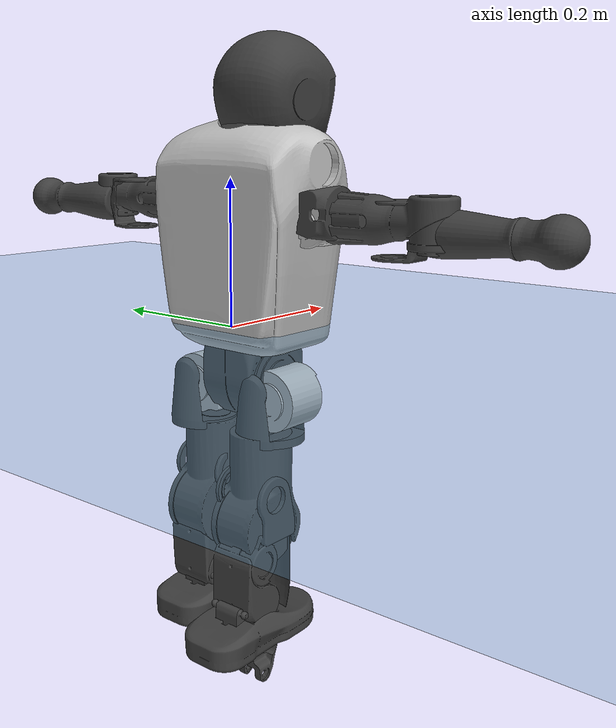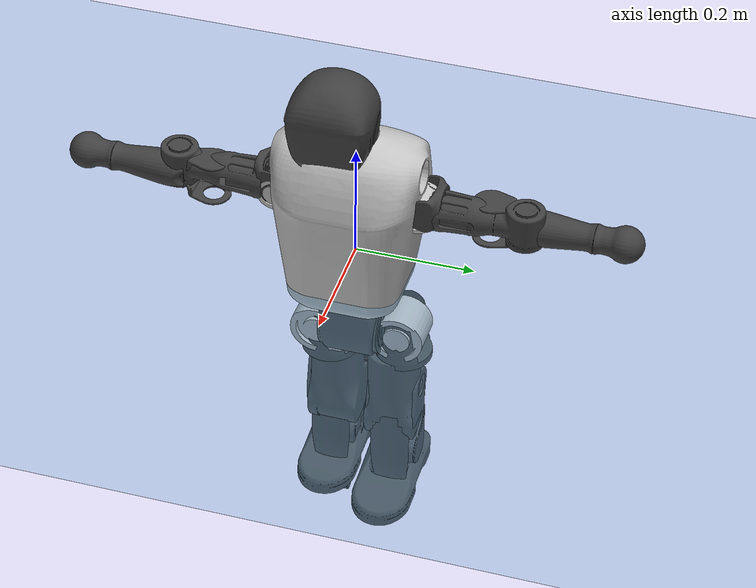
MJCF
<mujoco model="T1">
  <compiler angle="radian" assetdir="assets" balanceinertia="true" inertiafromgeom="false"/>

  <option timestep="0.005" density="1.2" viscosity="2e-05"/>

  <size nkey="1"/>

  <visual>
    <quality shadowsize="8192"/>
    <map shadowclip="0.5"/>
  </visual>

  <default>
    <default class="/">
      <joint armature="0.01" damping="0.01" frictionloss="0.1"/>
      <geom contype="0" conaffinity="0" group="1" solref="-1000 -80"/>
      <site size="0.01 0.005 0.005" group="5"/>
      <general forcelimited="true" biastype="affine" gainprm="25" biasprm="0 -25 -0.6"/>
      <default class="t1">
        <geom rgba="0.25 0.25 0.25 1"/>
        <default class="visual">
          <geom type="mesh" group="2"/>
        </default>
        <default class="collision">
          <geom group="3"/>
        </default>
        <default class="foot">
          <geom size="0.1115 0.05 0.015" type="box" condim="6" group="4" priority="1" solimp="0.015 1 0.015"/>
        </default>
        <default class="reward_collision_sphere">
          <geom group="5" rgba="1 0 0 1"/>
        </default>
      </default>
    </default>
  </default>

  <asset>
    <texture type="skybox" colorspace="auto" name="//unnamed_texture_0" builtin="gradient" rgb1="0.95 0.95 0.95" rgb2="0.95 0.95 0.95" width="100" height="600"/>
    <texture type="2d" colorspace="auto" name="texplane" builtin="checker" rgb1="0.345 0.575 0.748" rgb2="0.345 0.575 0.748" markrgb="1 1 1" width="512" height="512"/>
    <material name="MatPlane" class="/" texture="texplane" texuniform="true" texrepeat="2 2" specular="0.9"/>
    <mesh name="Trunk" class="/" file="Trunk.stl"/>
    <mesh name="H1" class="/" file="H1.stl"/>
    <mesh name="H2" class="/" file="H2.stl"/>
    <mesh name="AL1" class="/" file="AL1.stl"/>
    <mesh name="AL2" class="/" file="AL2.stl"/>
    <mesh name="AL3" class="/" file="AL3.stl"/>
    <mesh name="left_hand_link" class="/" file="left_hand_link.stl"/>
    <mesh name="AR1" class="/" file="AR1.stl"/>
    <mesh name="AR2" class="/" file="AR2.stl"/>
    <mesh name="AR3" class="/" file="AR3.stl"/>
    <mesh name="right_hand_link" class="/" file="right_hand_link.stl"/>
    <mesh name="Waist" class="/" file="Waist.stl"/>
    <mesh name="Hip_Pitch_Left" class="/" file="Hip_Pitch_Left.stl"/>
    <mesh name="Hip_Roll_Left" class="/" file="Hip_Roll_Left.stl"/>
    <mesh name="Hip_Yaw_Left" class="/" file="Hip_Yaw_Left.stl"/>
    <mesh name="Shank_Left" class="/" file="Shank_Left.stl"/>
    <mesh name="Ankle_Cross_Left" class="/" file="Ankle_Cross_Left.stl"/>
    <mesh name="left_foot_link" class="/" file="left_foot_link.stl"/>
    <mesh name="Hip_Pitch_Right" class="/" file="Hip_Pitch_Right.stl"/>
    <mesh name="Hip_Roll_Right" class="/" file="Hip_Roll_Right.stl"/>
    <mesh name="Hip_Yaw_Right" class="/" file="Hip_Yaw_Right.stl"/>
    <mesh name="Shank_Right" class="/" file="Shank_Right.stl"/>
    <mesh name="Ankle_Cross_Right" class="/" file="Ankle_Cross_Right.stl"/>
    <mesh name="right_foot_link" class="/" file="right_foot_link.stl"/>
  </asset>

  <worldbody>
    <geom name="floor" class="/" size="100 100 0.125" type="plane" group="0" material="MatPlane"/>
    <light name="toplight_shadow" class="/" pos="0 0 5" dir="0.0990148 0.0990148 -0.990148" type="directional" ambient="0.04 0.04 0.04" diffuse="0.55 0.55 0.55" specular="0.12 0.12 0.12"/>
    <light name="toplight_fill" class="/" pos="0 0 5" dir="0.0990148 0.0990148 -0.990148" type="directional" castshadow="false" ambient="0.04 0.04 0.04" diffuse="0.3 0.3 0.3" specular="0.08 0.08 0.08"/>
    <body name="trunk" childclass="t1" pos="0.00077039 0.00777243 -1.37091e-05" quat="0.999977 0.00233897 -0.00588282 -0.00242304">
      <inertial pos="0.060737 0.011425 0.0766118" quat="0.999904 -0.00244675 -0.0134074 -0.00262594" mass="5.32141" diaginertia="0.0570436 0.0104863 0.00807146"/>
      <joint name="//unnamed_joint_0" type="free" armature="0" damping="0" frictionloss="0"/>
      <geom name="//unnamed_geom_1" class="visual" rgba="0.76 0.76 0.76 1" mesh="Trunk"/>
      <geom name="//unnamed_geom_2" class="collision" size="0.0555896 0.0741195 0.111179" pos="0.0542428 0 0.0790537" type="box"/>
      <geom name="//unnamed_geom_3" class="reward_collision_sphere" size="0.0852374" pos="0.0542428 0 0.0658781"/>
      <geom name="//unnamed_geom_4" class="reward_collision_sphere" size="0.0111179" pos="0.0542428 0.0561644 0"/>
      <geom name="//unnamed_geom_5" class="reward_collision_sphere" size="0.0111179" pos="0.0542428 -0.0561644 0"/>
      <geom name="//unnamed_geom_6" class="reward_collision_sphere" size="0.0111179" pos="0.0542428 0.0707011 0.118581"/>
      <geom name="//unnamed_geom_7" class="reward_collision_sphere" size="0.0111179" pos="0.0542428 -0.0707011 0.118581"/>
      <site name="imu" pos="-0.0501272 -0.0200926 0.05028" size="0.00741195"/>
      <camera name="track" pos="0 -1.32152 0" quat="0.707107 0.707107 0 0" mode="trackcom"/>
      <camera name="ego_camera" pos="0.110294 0 0.276688" quat="-0.5 -0.5 0.5 0.5"/>
      <body name="H1" pos="0.0624205 -0.00748923 0.15549" quat="0.999995 0.000740285 0.00192207 0.002566">
        <inertial pos="0.0078316 -0.0152791 0.0305613" quat="0.777738 -0.0674229 -0.027725 0.624347" mass="0.187653" diaginertia="0.000152389 3.11063e-05 2.49002e-05"/>
        <joint name="AAHead_yaw" pos="0 0 0" axis="-0.0558942 -0.0370083 0.997751" range="-1.47442 1.63302" armature="0.0105303" damping="0" frictionloss="0.0705684"/>
        <geom name="//unnamed_geom_8" class="visual" mesh="H1"/>
        <body name="H2" pos="-0.0098167 -0.0137122 0.0430588" quat="0.999999 -0.00110846 0.00100085 0.000278572">
          <inertial pos="0.00530375 -0.0120476 0.0672958" quat="0.989682 0.0973476 -0.0805597 -0.0675515" mass="0.264708" diaginertia="0.00105803 0.000231086 0.000220663"/>
          <joint name="Head_pitch" pos="0 0 0" axis="-0.0322625 -0.999457 -0.0067568" stiffness="0.00211154" range="-1.21427 0.342295" armature="0.0124548" damping="0" frictionloss="0.0163359"/>
          <geom name="//unnamed_geom_9" class="visual" mesh="H2"/>
          <geom name="//unnamed_geom_10" class="collision" size="0.0592956" pos="0.00904046 0 0.0724659"/>
          <geom name="//unnamed_geom_11" class="reward_collision_sphere" size="0.0667075" pos="0.0180809 0 0.0658781"/>
        </body>
      </body>
      <body name="AL1" pos="0.0590042 0.0692239 0.158404" quat="1 0.000436285 0.000221474 -0.000257019">
        <inertial pos="0.0132888 0.0277773 0.00364399" quat="0.504163 0.501137 -0.497192 0.497475" mass="0.223313" diaginertia="0.000861419 0.000166855 4.27772e-05"/>
        <joint name="Left_Shoulder_Pitch" pos="0 0 0" axis="-0.0272252 0.997555 0.0643713" range="-3.29112 1.37773" armature="0.00861784" damping="0.00142204" frictionloss="0.0759483"/>
        <geom name="//unnamed_geom_12" class="visual" rgba="0.76 0.76 0.76 1" mesh="AL1"/>
        <body name="AL2" pos="-0.00195967 0.0302858 0.0101052" quat="1 -0.000104341 0.000380155 0.000202419">
          <inertial pos="-0.00445566 0.032987 0.0118856" quat="0.520098 0.471802 -0.476736 0.528794" mass="0.0602181" diaginertia="0.000237447 4.31168e-05 2.11089e-05"/>
          <joint name="Left_Shoulder_Roll" pos="0 0 0" axis="-0.999278 0.0377624 -0.00425701" range="-1.56342 1.69004" armature="0.00673845" damping="0" frictionloss="0.0720614"/>
          <geom name="//unnamed_geom_13" class="visual" mesh="AL2"/>
          <body name="AL3" pos="0.00276708 0.0409955 -0.00658713" quat="1 -0.000199076 -9.43282e-05 -0.000217695">
            <inertial pos="0.00863514 0.0571255 -0.00224929" quat="0.703053 0.707632 -0.0678777 0.0191098" mass="0.434502" diaginertia="0.00732015 0.00170043 9.5746e-05"/>
            <joint name="Left_Elbow_Pitch" pos="0 0 0" axis="0.00636279 -0.99998 -0.000476792" range="-2.16417 2.32727" armature="0.00736335" damping="0" frictionloss="0.0205199"/>
            <geom name="//unnamed_geom_14" class="visual" mesh="AL3"/>
            <geom name="//unnamed_geom_15" class="collision" size="0.0222358 0.0555896" pos="0 0.0330379 0" quat="0.707105 0.707108 0 0" type="cylinder"/>
            <geom name="//unnamed_geom_16" class="reward_collision_sphere" size="0.026683"/>
            <body name="left_hand_link" pos="-0.0125158 0.0877285 -0.00940865" quat="0.999999 0.000235175 0.00106492 -0.00121488">
              <inertial pos="-0.0127613 0.0823532 0.0125624" quat="0.721513 0.69214 0.00793921 0.0172746" mass="0.131241" diaginertia="0.00490038 0.000956233 2.27227e-05"/>
              <joint name="Left_Elbow_Yaw" pos="0 0 0" axis="-0.00746254 0.00331232 0.999967" stiffness="0.0360447" range="-2.41357 0.0824885" armature="0.00353139" damping="0" frictionloss="0.0726012"/>
              <geom name="//unnamed_geom_17" class="visual" mesh="left_hand_link"/>
              <geom name="//unnamed_geom_18" class="collision" size="0.0222358 0.0648546" pos="0 0.0858985 0" quat="0.707105 0.707108 0 0" type="cylinder"/>
              <geom name="//unnamed_geom_19" class="reward_collision_sphere" size="0.0370597"/>
              <geom name="//unnamed_geom_20" class="reward_collision_sphere" size="0.0259418" pos="0 0.0726833 0"/>
              <geom name="//unnamed_geom_21" class="reward_collision_sphere" size="0.0259418" pos="0 0.142063 0"/>
            </body>
          </body>
        </body>
      </body>
      <body name="AR1" pos="0.0498754 -0.0730101 0.145164" quat="0.99997 0.00262561 -0.000374735 -0.00732001">
        <inertial pos="-0.00105049 -0.0231258 -0.006912" quat="0.504162 0.49595 -0.503918 0.495904" mass="0.180599" diaginertia="0.000773397 0.000136769 2.98788e-05"/>
        <joint name="Right_Shoulder_Pitch" pos="0 0 0" axis="-0.00586317 -0.999754 -0.0213727" range="-1.40812 3.32261" armature="0.00941322" damping="0.000161957" frictionloss="0.100157"/>
        <geom name="//unnamed_geom_22" class="visual" rgba="0.76 0.76 0.76 1" mesh="AR1"/>
        <body name="AR2" pos="-0.00574394 -0.0273443 0.0138698" quat="0.999983 -0.0026707 0.00276719 0.00438818">
          <inertial pos="0.00976179 -0.0311474 0.00525655" quat="0.520053 0.452061 -0.503468 0.521254" mass="0.0723996" diaginertia="0.000270619 4.40083e-05 2.44527e-05"/>
          <joint name="Right_Shoulder_Roll" pos="0 0 0" axis="-0.998828 -0.00679958 0.0479136" stiffness="0.0477177" range="-1.59402 1.72159" armature="0.00767217" damping="0.0644699" frictionloss="0.0830117"/>
          <geom name="//unnamed_geom_23" class="visual" mesh="AR2"/>
          <body name="AR3" pos="0.00894662 -0.0397828 -0.00575208" quat="0.99998 -0.00427133 -0.00224019 -0.00406355">
            <inertial pos="-0.0155371 -0.0571348 -0.00656246" quat="0.717031 0.69696 0.00221008 0.0103875" mass="0.395981" diaginertia="0.00597531 0.00141454 6.90366e-05"/>
            <joint name="Right_Elbow_Pitch" pos="0 0 0" axis="-0.027663 0.999128 0.0312886" stiffness="0.0150569" range="-2.14695 2.58885" armature="0.00652985" damping="0" frictionloss="0.0457912"/>
            <geom name="//unnamed_geom_24" class="visual" mesh="AR3"/>
            <geom name="//unnamed_geom_25" class="collision" size="0.0222358 0.0555896" pos="0 -0.0330379 0" quat="0.707105 0.707108 0 0" type="cylinder"/>
            <geom name="//unnamed_geom_26" class="reward_collision_sphere" size="0.026683"/>
            <body name="right_hand_link" pos="0.00764624 -0.087715 -0.0122676" quat="0.999983 -0.00236092 0.00378468 -0.00377202">
              <inertial pos="-0.014501 -0.0780534 0.0131645" quat="0.707445 0.706762 0.00108457 -0.00282048" mass="0.148577" diaginertia="0.00701635 0.00136182 2.63167e-05"/>
              <joint name="Right_Elbow_Yaw" pos="0 0 0" axis="0.000306774 8.70559e-05 1" stiffness="0.0163911" range="-0.0125862 2.69158" armature="0.009343" damping="0" frictionloss="0.0780341"/>
              <geom name="//unnamed_geom_27" class="visual" mesh="right_hand_link"/>
              <geom name="//unnamed_geom_28" class="collision" size="0.0222358 0.0648546" pos="0 -0.0858985 0" quat="0.707105 0.707108 0 0" type="cylinder"/>
              <geom name="//unnamed_geom_29" class="reward_collision_sphere" size="0.0370597"/>
              <geom name="//unnamed_geom_30" class="reward_collision_sphere" size="0.0259418" pos="0 -0.0726833 0"/>
              <geom name="//unnamed_geom_31" class="reward_collision_sphere" size="0.0259418" pos="0 -0.142063 0"/>
            </body>
          </body>
        </body>
      </body>
      <body name="Waist" pos="0.0665185 0.0127982 -0.0840226" quat="0.999999 0.00138181 -0.000748092 -0.000381354">
        <inertial pos="-0.00185166 -0.011353 0.00756904" quat="0.986102 -0.0253522 -0.158518 0.0427988" mass="1.34343" diaginertia="0.00383679 0.000821054 0.000744855"/>
        <joint name="Waist" pos="0 0 0" axis="-0.000583016 0.0297475 0.999557" stiffness="0.0338931" range="-1.42832 1.69993" armature="0.0071431" damping="0.079848" frictionloss="0.0419347"/>
        <geom name="//unnamed_geom_32" class="visual" mesh="Waist"/>
        <body name="Hip_Pitch_Left" pos="-0.00866676 0.0750924 0.00316718" quat="1 0.000189654 0.00010493 3.50314e-05">
          <inertial pos="0.00743745 -0.0071409 0.00103432" quat="0.97928 0.201508 0.00389461 0.019756" mass="0.445137" diaginertia="0.00118489 0.000202 0.000168353"/>
          <joint name="Left_Hip_Pitch" pos="0 0 0" axis="0.025529 0.999465 0.0204351" range="-1.86369 1.32259" armature="0.00945184" damping="0.0586035" frictionloss="0.0737881"/>
          <geom name="//unnamed_geom_33" class="visual" rgba="0.76 0.76 0.76 1" mesh="Hip_Pitch_Left"/>
          <body name="Hip_Roll_Left" pos="-0.0130444 0.000528219 -0.00397371" quat="0.999999 0.000412817 0.000800826 0.000729863">
            <inertial pos="0.00496469 -0.000136931 -0.0235276" quat="0.705445 -0.0154963 0.000643802 0.708595" mass="0.12337" diaginertia="0.000760614 0.000185573 6.28059e-05"/>
            <joint name="Left_Hip_Roll" pos="0 0 0" axis="-0.999392 0.0334207 0.0098929" stiffness="0.0651191" range="-1.43388 -0.0702446" armature="0.0068208" damping="0" frictionloss="0.0663114"/>
            <geom name="//unnamed_geom_34" class="visual" mesh="Hip_Roll_Left"/>
            <geom name="//unnamed_geom_35" class="reward_collision_sphere" size="0.0407657"/>
            <body name="Hip_Yaw_Left" pos="0.0056135 -0.0140346 -0.0682316" quat="0.999999 -0.00115538 0.000445128 0.000428884">
              <inertial pos="0.00184541 0.000606325 -0.0647464" quat="0.664915 -0.077053 -0.0186003 0.742701" mass="0.908982" diaginertia="0.0130685 0.00339382 0.00026257"/>
              <joint name="Left_Hip_Yaw" pos="0 0 0" axis="-0.00558721 0.00893103 -0.999945" range="-0.951601 0.692219" armature="0.00376651" damping="0.0899254" frictionloss="0.0770043"/>
              <geom name="//unnamed_geom_36" class="visual" mesh="Hip_Yaw_Left"/>
              <geom name="//unnamed_geom_37" class="collision" size="0.0370597 0.0592956" type="cylinder"/>
              <body name="Shank_Left" pos="-0.00805024 0.00230711 -0.0754135" quat="0.999993 -0.0013979 0.00268843 0.00207385">
                <inertial pos="-0.00349098 0.0012254 -0.0700012" quat="0.996622 0.00987069 -0.0390442 0.0715748" mass="0.659906" diaginertia="0.0198538 0.00522124 0.000287643"/>
                <joint name="Left_Knee_Pitch" pos="0 0 0" axis="0.0111115 0.999923 0.00554888" range="-0.172264 2.35746" armature="0.00734512" damping="0.0272689" frictionloss="0.0928743"/>
                <geom name="//unnamed_geom_38" class="visual" mesh="Shank_Left"/>
                <geom name="//unnamed_geom_39" class="collision" size="0.0370597 0.0555896" pos="0 0 -0.0790537" type="cylinder"/>
                <geom name="//unnamed_geom_40" class="reward_collision_sphere" size="0.0481777"/>
                <body name="Ankle_Cross_Left" pos="0.00445886 0.00311669 -0.173366" quat="0.999998 0.00125645 0.00127501 -0.00104348">
                  <inertial pos="0.0102057 -0.0135622 -0.00534717" quat="0.440168 0.551608 0.553431 0.442375" mass="0.0340423" diaginertia="1.59141e-05 3.84321e-06 1.41789e-06"/>
                  <joint name="Left_Ankle_Pitch" pos="0 0 0" axis="0.0583369 0.998282 0.00542715" range="-0.681942 0.26883" armature="0.012008" damping="0" frictionloss="0.0422182"/>
                  <geom name="//unnamed_geom_41" class="visual" mesh="Ankle_Cross_Left"/>
                  <body name="left_foot_link" pos="6.95778e-05 -0.00905742 -0.0193084" quat="0.999973 -0.00347122 -0.00346991 0.00541934">
                    <inertial pos="0.0132782 0.000926002 0.000169831" quat="0.0342597 0.630234 -0.0190082 0.775416" mass="0.315534" diaginertia="0.00147642 0.000289615 0.000235894"/>
                    <joint name="Left_Ankle_Roll" pos="0 0 0" axis="-1 2.67811e-05 -0.000317945" stiffness="0.0617161" range="-0.181825 0.713722" armature="0.00392504" damping="0.00419194" frictionloss="0.123649"/>
                    <geom name="//unnamed_geom_42" class="visual" mesh="left_foot_link"/>
                    <geom name="left_foot" class="foot" size="0.0901582 0.050281 0.0112052" pos="0.00904046 0 -0.00988172"/>
                    <geom name="//unnamed_geom_44" class="reward_collision_sphere" size="0.0385421" pos="0.00904046 0 -0.00988172"/>
                    <geom name="//unnamed_geom_45" class="reward_collision_sphere" size="0.0222358" pos="0.0858844 -0.0151974 -0.00988172"/>
                    <geom name="//unnamed_geom_46" class="reward_collision_sphere" size="0.0222358" pos="-0.0632832 -0.0151974 -0.00988172"/>
                    <site name="left_foot" class="foot" pos="0.00904046 0 -0.00988172" size="0.00741195"/>
                  </body>
                </body>
              </body>
            </body>
          </body>
        </body>
        <body name="Hip_Pitch_Right" pos="-0.00173597 -0.0594694 -0.00200844" quat="0.99998 -0.00619562 -0.000948739 -0.000199381">
          <inertial pos="-0.00637403 0.0158305 -0.0209679" quat="0.975001 -0.221201 0.0210321 0.000779705" mass="0.410729" diaginertia="0.00101967 0.000149457 0.000139769"/>
          <joint name="Right_Hip_Pitch" pos="0 0 0" axis="0.00147026 -0.99999 0.00426227" stiffness="0.00724041" range="-1.4484 1.75564" armature="0.00328377" damping="0" frictionloss="0.0991839"/>
          <geom name="//unnamed_geom_47" class="visual" rgba="0.76 0.76 0.76 1" mesh="Hip_Pitch_Right"/>
          <body name="Hip_Roll_Right" pos="-0.014265 0.01228 -0.00421634" quat="0.999999 0.000238039 0.00119067 -0.000617926">
            <inertial pos="-0.00458135 -0.00619309 -0.0457439" quat="0.706221 -0.0102578 -0.0067801 0.707884" mass="0.116123" diaginertia="0.000951531 0.000147114 5.685e-05"/>
            <joint name="Right_Hip_Roll" pos="0 0 0" axis="-0.999409 -0.0342938 0.00247611" range="-0.190807 1.86636" armature="0.00675041" damping="0.0770757" frictionloss="0.126497"/>
            <geom name="//unnamed_geom_48" class="visual" mesh="Hip_Roll_Right"/>
            <geom name="//unnamed_geom_49" class="reward_collision_sphere" size="0.0407657"/>
            <body name="Hip_Yaw_Right" pos="-0.0137684 0.00743437 -0.062757" quat="0.999987 0.00482965 -0.00148771 0.000509647">
              <inertial pos="-0.00366291 0.00963781 -0.0684977" quat="0.71991 0.039172 -0.00347944 0.692952" mass="0.805098" diaginertia="0.0182607 0.00282197 0.000377045"/>
              <joint name="Right_Hip_Yaw" pos="0 0 0" axis="0.0553417 -0.0527527 -0.997073" range="-1.02139 1.00048" armature="0.0120291" damping="0.0106248" frictionloss="0.0679752"/>
              <geom name="//unnamed_geom_50" class="visual" mesh="Hip_Yaw_Right"/>
              <geom name="//unnamed_geom_51" class="collision" size="0.0370597 0.0592956" type="cylinder"/>
              <body name="Shank_Right" pos="-0.0266458 -0.00813359 -0.084041" quat="0.99999 -0.00201604 3.04581e-05 0.00403913">
                <inertial pos="-0.0132616 -0.000567204 -0.0848198" quat="0.995739 -0.0401383 -0.0797855 -0.0229407" mass="0.85661" diaginertia="0.0197026 0.0047216 0.000233574"/>
                <joint name="Right_Knee_Pitch" pos="0 0 0" axis="0.0110239 -0.999698 0.0219626" stiffness="0.0719546" range="-2.35977 -0.194455" armature="0.00782218" damping="0" frictionloss="0.0783571"/>
                <geom name="//unnamed_geom_52" class="visual" mesh="Shank_Right"/>
                <geom name="//unnamed_geom_53" class="collision" size="0.0370597 0.0555896" pos="0 0 -0.0790537" type="cylinder"/>
                <geom name="//unnamed_geom_54" class="reward_collision_sphere" size="0.0481777"/>
                <body name="Ankle_Cross_Right" pos="-0.0052428 -0.00671434 -0.174872" quat="0.999981 0.00326161 -0.00397809 0.00342921">
                  <inertial pos="-0.00175527 -0.011337 -0.00577344" quat="0.44244 0.55219 0.550076 0.443565" mass="0.0296834" diaginertia="2.07162e-05 3.14743e-06 1.57845e-06"/>
                  <joint name="Right_Ankle_Pitch" pos="0 0 0" axis="0.0413694 -0.998757 0.0278051" range="-0.0364315 0.867901" armature="0.00770992" damping="0" frictionloss="0.0845743"/>
                  <geom name="//unnamed_geom_55" class="visual" mesh="Ankle_Cross_Right"/>
                  <body name="right_foot_link" pos="-0.0111477 0.00146114 -0.0135143" quat="1 -5.0861e-05 0.000112013 -3.46926e-05">
                    <inertial pos="-0.000725581 -0.0113224 -0.00494416" quat="0.0099975 0.604769 -0.0312024 0.795726" mass="0.190966" diaginertia="0.00146563 0.00025975 0.000215165"/>
                    <joint name="Right_Ankle_Roll" pos="0 0 0" axis="-0.999753 -0.017523 0.0136688" stiffness="0.000791286" range="-0.375698 0.610383" armature="0.00638361" damping="0" frictionloss="0.127991"/>
                    <geom name="//unnamed_geom_56" class="visual" mesh="right_foot_link"/>
                    <geom name="right_foot" class="foot" size="0.120258 0.0300248 0.0120896" pos="0.00904046 0 -0.00988172"/>
                    <geom name="//unnamed_geom_58" class="reward_collision_sphere" size="0.0296478"/>
                    <geom name="//unnamed_geom_59" class="reward_collision_sphere" size="0.0222358" pos="0.00904046 0 -0.00988172"/>
                    <geom name="//unnamed_geom_60" class="reward_collision_sphere" size="0.0222358" pos="0.0858844 0.0151974 -0.00988172"/>
                    <geom name="//unnamed_geom_61" class="reward_collision_sphere" size="0.0222358" pos="-0.0632832 0.0151974 -0.00988172"/>
                    <site name="right_foot" class="foot" pos="0.00904046 0 -0.00988172" size="0.00741195"/>
                  </body>
                </body>
              </body>
            </body>
          </body>
        </body>
      </body>
    </body>
  </worldbody>

  <contact>
    <pair class="/" geom1="floor" geom2="left_foot" name="//unnamed_contact_0"/>
    <pair class="/" geom1="floor" geom2="right_foot" name="//unnamed_contact_1"/>
  </contact>

  <actuator>
    <general name="AAHead_yaw" class="/" joint="AAHead_yaw" forcerange="-6.21806 6.21806" gainprm="25.3949" biasprm="0 -25.3949 -0.351083"/>
    <general name="Head_pitch" class="/" joint="Head_pitch" forcerange="-4.16264 4.16264" gainprm="25.3949" biasprm="0 -25.3949 -0.351083"/>
    <general name="Left_Shoulder_Pitch" class="/" joint="Left_Shoulder_Pitch" forcerange="-21.2105 21.2105" gainprm="25.3949" biasprm="0 -25.3949 -0.351083"/>
    <general name="Left_Shoulder_Roll" class="/" joint="Left_Shoulder_Roll" forcerange="-12.7507 12.7507" gainprm="25.3949" biasprm="0 -25.3949 -0.351083"/>
    <general name="Left_Elbow_Pitch" class="/" joint="Left_Elbow_Pitch" forcerange="-17.2007 17.2007" gainprm="25.3949" biasprm="0 -25.3949 -0.351083"/>
    <general name="Left_Elbow_Yaw" class="/" joint="Left_Elbow_Yaw" forcerange="-13.4846 13.4846" gainprm="25.3949" biasprm="0 -25.3949 -0.351083"/>
    <general name="Right_Shoulder_Pitch" class="/" joint="Right_Shoulder_Pitch" forcerange="-15.1009 15.1009" gainprm="25.3949" biasprm="0 -25.3949 -0.351083"/>
    <general name="Right_Shoulder_Roll" class="/" joint="Right_Shoulder_Roll" forcerange="-13.1453 13.1453" gainprm="25.3949" biasprm="0 -25.3949 -0.351083"/>
    <general name="Right_Elbow_Pitch" class="/" joint="Right_Elbow_Pitch" forcerange="-17.5469 17.5469" gainprm="25.3949" biasprm="0 -25.3949 -0.351083"/>
    <general name="Right_Elbow_Yaw" class="/" joint="Right_Elbow_Yaw" forcerange="-17.488 17.488" gainprm="25.3949" biasprm="0 -25.3949 -0.351083"/>
    <general name="Waist" class="/" joint="Waist" forcerange="-29.0971 29.0971" gainprm="25.3949" biasprm="0 -25.3949 -0.351083"/>
    <general name="Left_Hip_Pitch" class="/" joint="Left_Hip_Pitch" forcerange="-34.9295 34.9295" gainprm="25.3949" biasprm="0 -25.3949 -0.351083"/>
    <general name="Left_Hip_Roll" class="/" joint="Left_Hip_Roll" forcerange="-28.8027 28.8027" gainprm="25.3949" biasprm="0 -25.3949 -0.351083"/>
    <general name="Left_Hip_Yaw" class="/" joint="Left_Hip_Yaw" forcerange="-28.9562 28.9562" gainprm="25.3949" biasprm="0 -25.3949 -0.351083"/>
    <general name="Left_Knee_Pitch" class="/" joint="Left_Knee_Pitch" forcerange="-33.2467 33.2467" gainprm="25.3949" biasprm="0 -25.3949 -0.351083"/>
    <general name="Left_Ankle_Pitch" class="/" joint="Left_Ankle_Pitch" forcerange="-6.96195 6.96195" gainprm="25.3949" biasprm="0 -25.3949 -0.351083"/>
    <general name="Left_Ankle_Roll" class="/" joint="Left_Ankle_Roll" forcerange="-16.4759 16.4759" gainprm="25.3949" biasprm="0 -25.3949 -0.351083"/>
    <general name="Right_Hip_Pitch" class="/" joint="Right_Hip_Pitch" forcerange="-32.6605 32.6605" gainprm="25.3949" biasprm="0 -25.3949 -0.351083"/>
    <general name="Right_Hip_Roll" class="/" joint="Right_Hip_Roll" forcerange="-11.4345 11.4345" gainprm="25.3949" biasprm="0 -25.3949 -0.351083"/>
    <general name="Right_Hip_Yaw" class="/" joint="Right_Hip_Yaw" forcerange="-31.2582 31.2582" gainprm="25.3949" biasprm="0 -25.3949 -0.351083"/>
    <general name="Right_Knee_Pitch" class="/" joint="Right_Knee_Pitch" forcerange="-60.6636 60.6636" gainprm="25.3949" biasprm="0 -25.3949 -0.351083"/>
    <general name="Right_Ankle_Pitch" class="/" joint="Right_Ankle_Pitch" forcerange="-15.194 15.194" gainprm="25.3949" biasprm="0 -25.3949 -0.351083"/>
    <general name="Right_Ankle_Roll" class="/" joint="Right_Ankle_Roll" forcerange="-6.16812 6.16812" gainprm="25.3949" biasprm="0 -25.3949 -0.351083"/>
  </actuator>

  <sensor>
    <gyro site="imu" name="imu_angular_velocity"/>
    <velocimeter site="imu" name="imu_linear_velocity"/>
    <framelinvel objtype="site" objname="left_foot" name="left_foot_global_linear_velocity"/>
    <framelinvel objtype="site" objname="right_foot" name="right_foot_global_linear_velocity"/>
  </sensor>

  <keyframe>
    <key name="home" qpos="0 0 0.6385 1 0 0 0 0 0 0 1.4 0 -0.4 0 -1.4 0 0.4 0 -0.4 0 0 0.8 -0.4 0 0.4 0 0 -0.8 0.4 0"/>
  </keyframe>
</mujoco>
